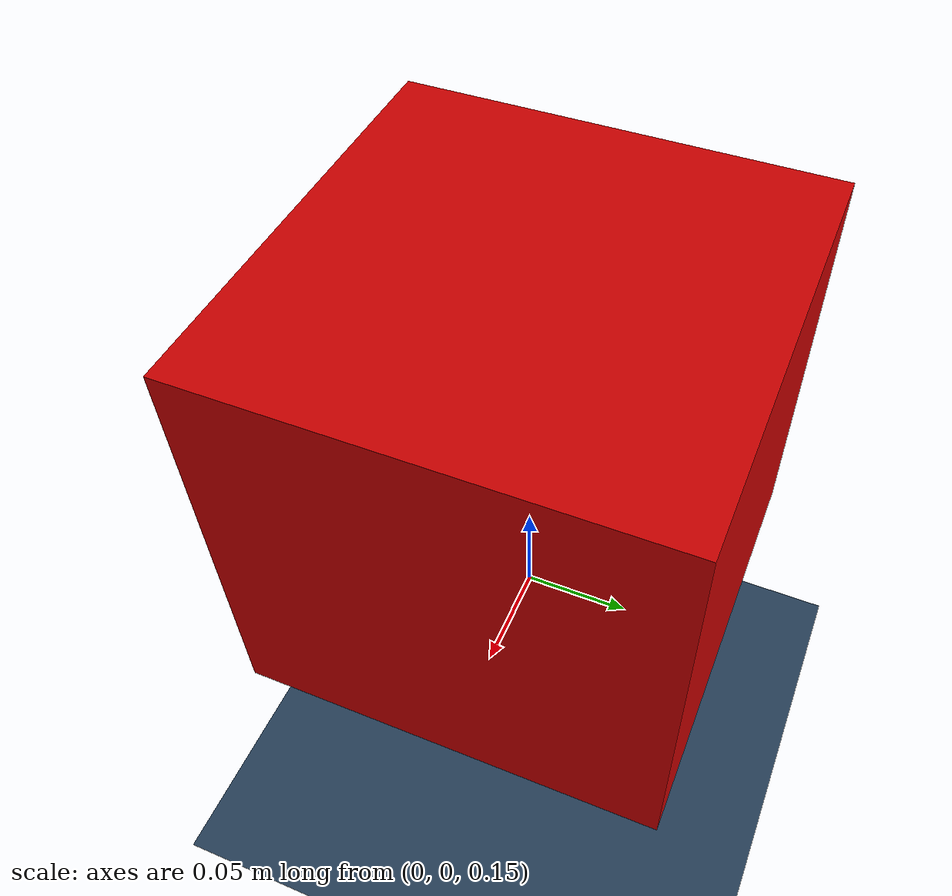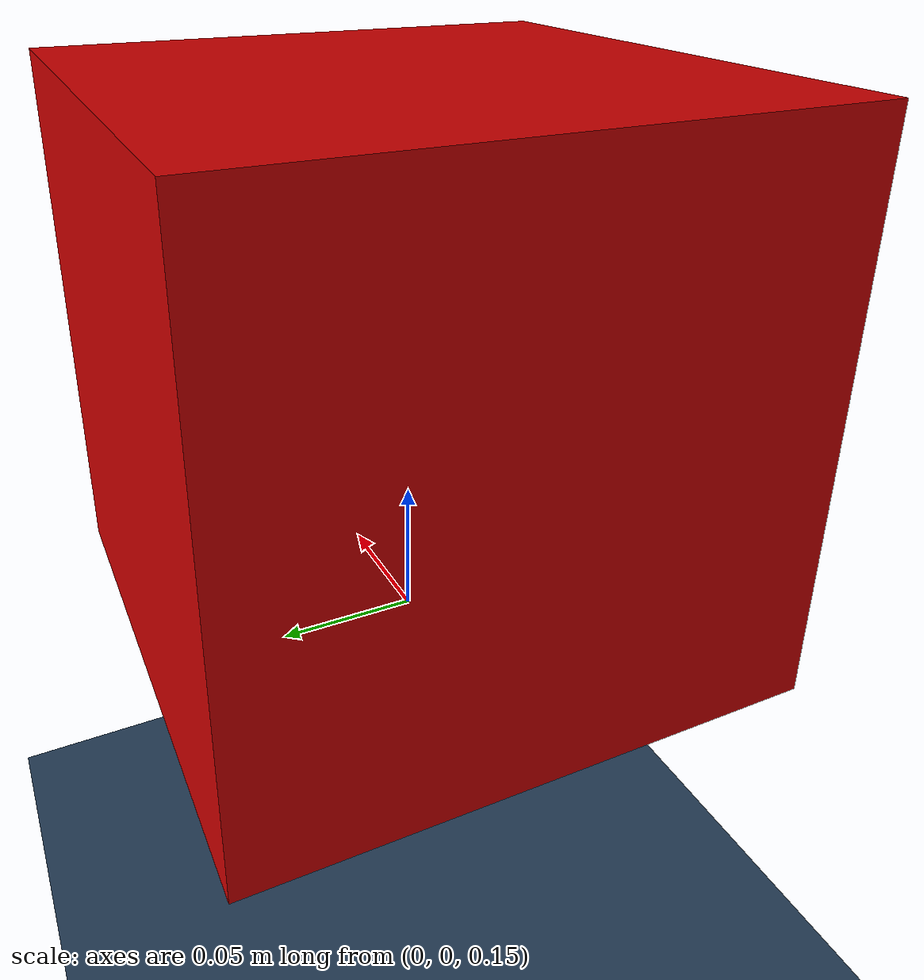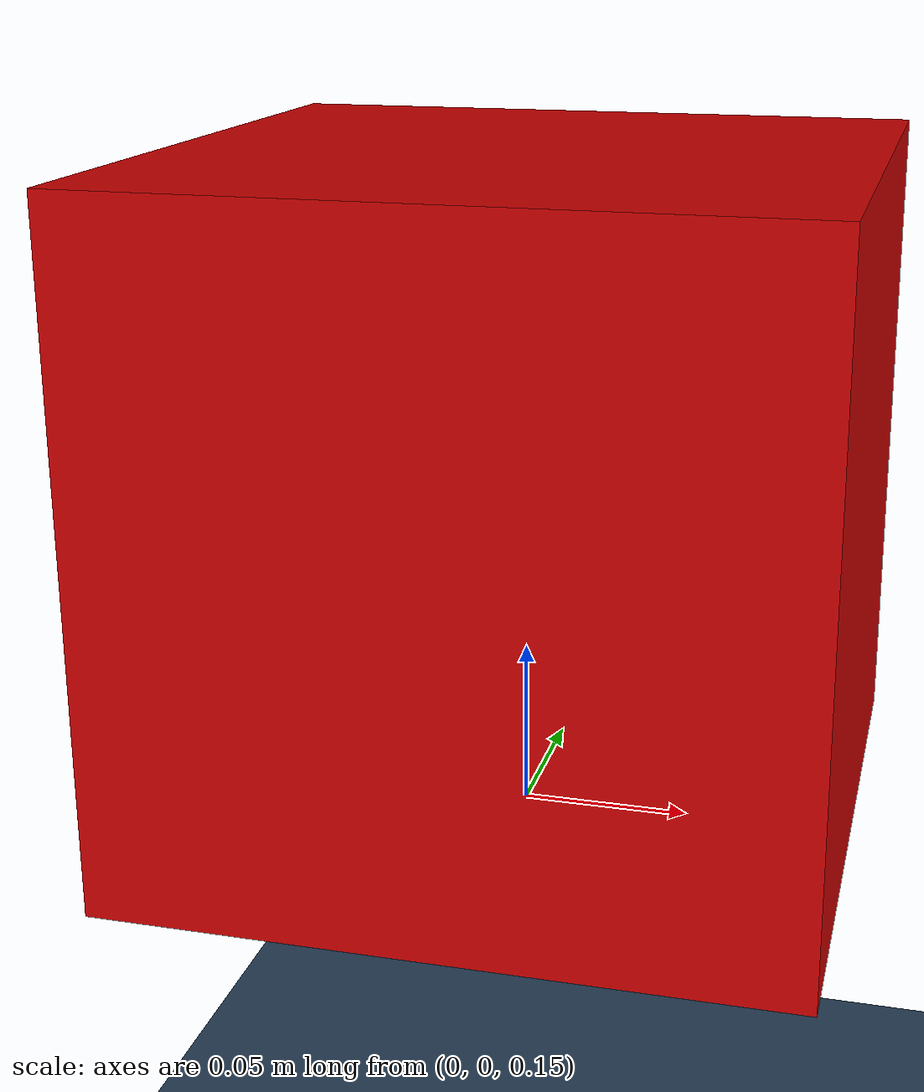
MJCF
<mujoco model="IMU_test">
	<compiler angle="radian" coordinate="local" />
	<option gravity="0 0 -9.81" magnetic="1 0 0" integrator="RK4" timestep="0.002">
		<flag contact="disable" sensornoise="enable" />
	</option>
	<asset>
		<texture name="grid" type="2d" builtin="checker" width="512" height="512" rgb1=".1 .2 .3" rgb2=".2 .3 .4" />
		<material name="grid" texture="grid" texrepeat="1 1" texuniform="true" reflectance=".2" />
	</asset>
	<worldbody>
		<geom name="floor" size="0 0 .05" type="plane" material="grid" condim="3" />
		<light name="spotlight" mode="targetbodycom" target="box_body" diffuse=".8 .8 .8" specular="0.3 0.3 0.3" pos="0 -20 4" cutoff="10" />
		<body name="box_body" pos="0 0 .25">
			<camera name="back" pos="-3 0 1" xyaxes="0 -1 0 1 0 2" mode="trackcom" />
			<camera name="side" pos="0 -3 1" xyaxes="1 0 0 0 1 2" mode="trackcom" />
			<joint name="box_joint" type="ball" />
			<inertial pos="0 0 0" mass="1" diaginertia="0.1 0.1 0.1" />
			<geom type="box" size="0.1 0.1 0.1" rgba="0.8 0 0 1" />
			<site name="imu_site" pos="0 0 0" euler="0 0 0" type="box" size=".03 .03" rgba="1 0 0 1" />
		</body>
	</worldbody>
	<sensor>
		<accelerometer name="BMI088_ACC" site="imu_site" noise="0.0018" />
		<gyro name="BMI088_GYR" site="imu_site" noise="0.00244" />
		<magnetometer name="BMI088_MAG" site="imu_site" noise="0.00006" />
	</sensor>
	<actuator>
	</actuator>
</mujoco>
